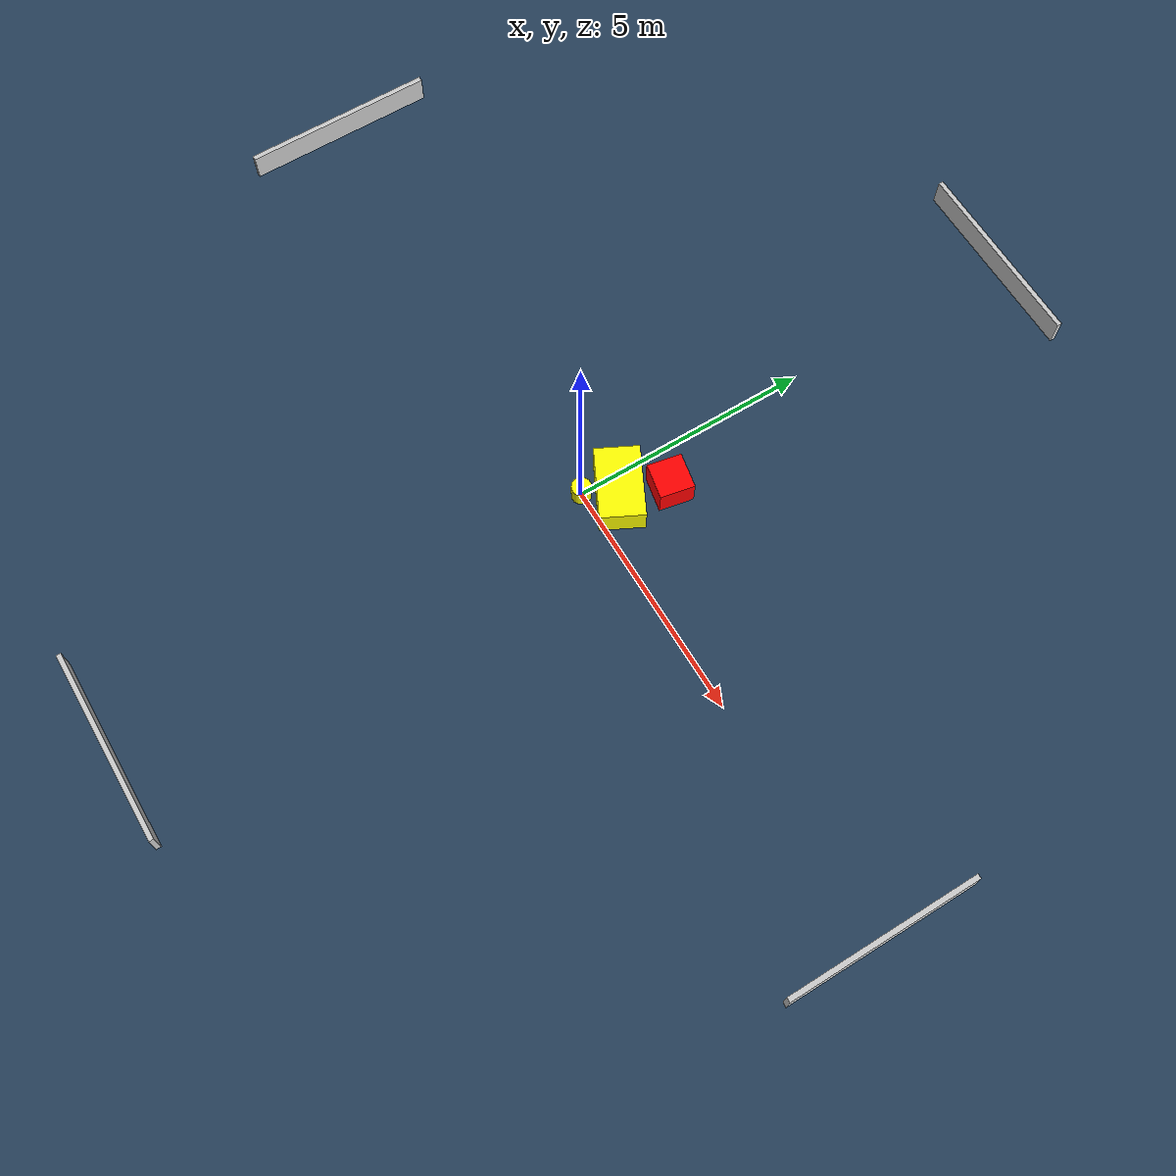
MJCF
<?xml version="1.0" ?>
<mujoco model="generated_environment">
  <option timestep="0.01" integrator="RK4" cone="elliptic"/>
  <default>
    <geom density="1"/>
  </default>
  <asset>
    <texture builtin="gradient" height="3072" name="skybox" rgb1="0.3 0.5 0.7" rgb2="0 0 0" type="skybox" width="512"/>
    <texture builtin="checker" height="300" name="groundplane" rgb1="0.2 0.3 0.4" rgb2="0.1 0.2 0.3" type="2d" width="300"/>
    <material name="groundplane" reflectance="0.2" texrepeat="5 5" texture="groundplane"/>
  </asset>
  <worldbody>
    <light dir="0 0 -1" directional="true" pos="0 0 1.5"/>
    <geom condim="3" friction="0.5 0.005 0.001" material="groundplane" name="floor" pos="0 0 0" size="0 0 0.05" type="plane"/>
    <body name="walls">
      <geom name="wall_1" condim="4" pos="-10.0 0.0 0.3" rgba="0.800000011920929 0.800000011920929 0.800000011920929 1.0" size="0.05 2.0 0.3" type="box"/>
      <geom name="wall_2" condim="4" pos="10.0 0.0 0.3" rgba="0.800000011920929 0.800000011920929 0.800000011920929 1.0" size="0.05 2.0 0.3" type="box"/>
      <geom name="wall_3" condim="4" pos="0.0 -10.0 0.3" rgba="0.800000011920929 0.800000011920929 0.800000011920929 1.0" size="2.0 0.05 0.3" type="box"/>
      <geom name="wall_4" condim="4" pos="0.0 10.0 0.3" rgba="0.800000011920929 0.800000011920929 0.800000011920929 1.0" size="2.0 0.05 0.3" type="box"/>
    </body>
    <body name="robot">
      <joint name="joint_x" type="slide" pos="0 0 0" axis="1 0 0"/>
      <joint name="joint_y" type="slide" pos="0 0 0" axis="0 1 0"/>
      <geom name="robot" type="cylinder" pos="0.0 0.0 0.2" size="0.2 0.2 0.0" mass="5.0" friction="1.0 0.005 0.0001" condim="4" rgba="1.0 1.0 0.0 1.0"/>
    </body>
    <body name="obstacle_1_movable">
      <geom name="obstacle_1_movable" condim="4" pos="0.36486479731403065 0.6388562442121261 0.3" euler="0 0 62.9787120100069" friction="0.0 0.005 0.001" rgba="1.0 1.0 0.0 1.0" size="0.4556775015598254 0.736996142243149 0.3" type="box" mass="0.1"/>
      <joint type="free"/>
    </body>
    <body name="obstacle_2_static">
      <geom name="obstacle_2_static" condim="4" pos="0.7765133551734515 1.5408769266615894 0.3" euler="0 0 258.9757506494398" friction="0.0 0.005 0.001" rgba="1.0 0.0 0.0 1.0" size="0.3575730492505198 0.3654323566690926 0.3" type="box"/>
    </body>
  </worldbody>
  <actuator>
    <motor name="actuator_x" joint="joint_x" gear="1" ctrlrange="-1 1"/>
    <motor name="actuator_y" joint="joint_y" gear="1" ctrlrange="-1 1"/>
  </actuator>
</mujoco>
